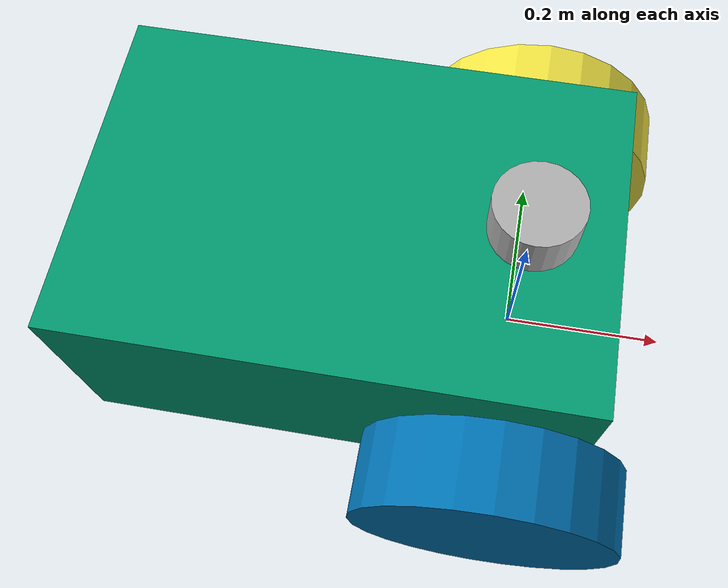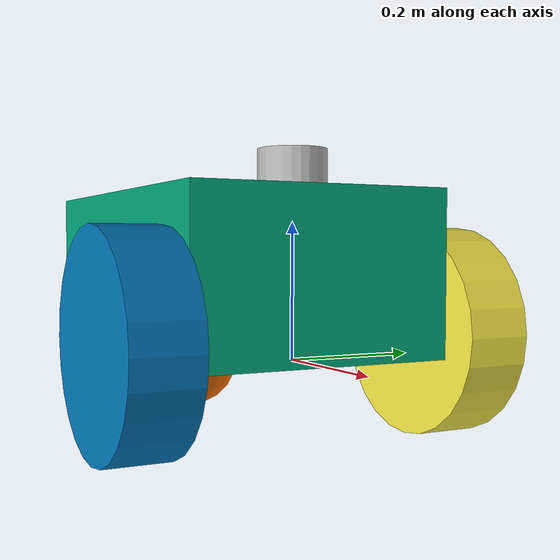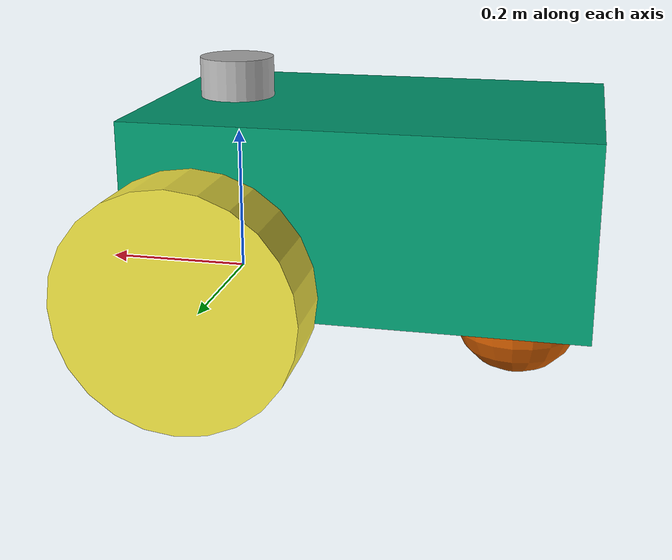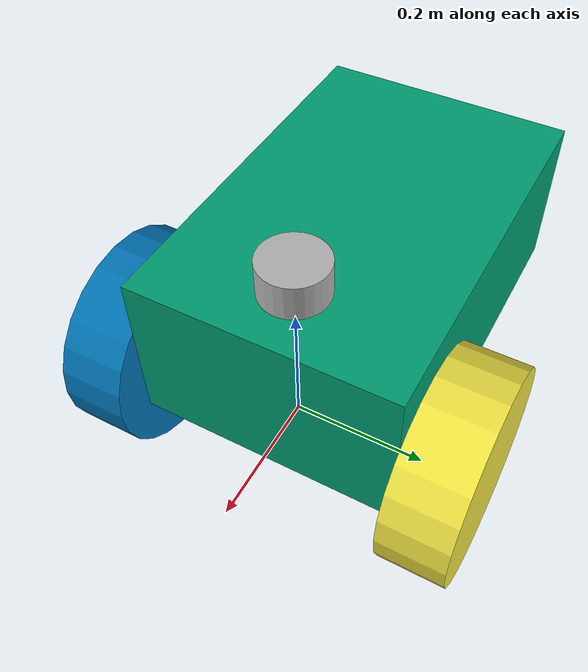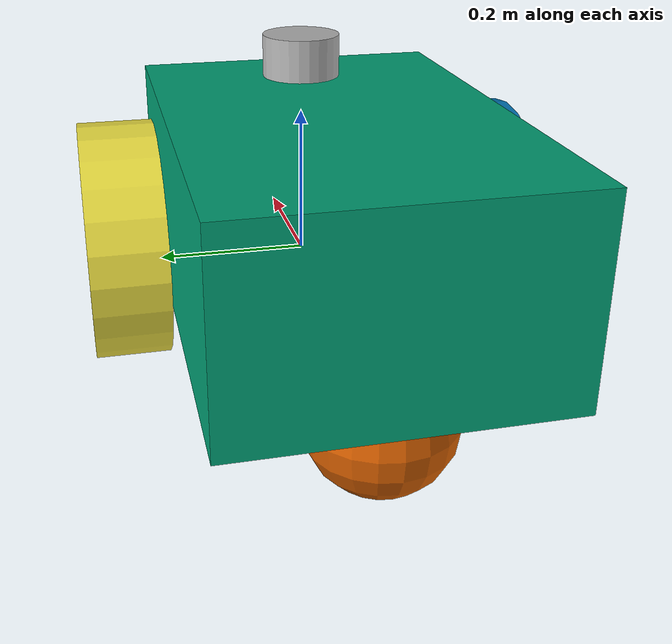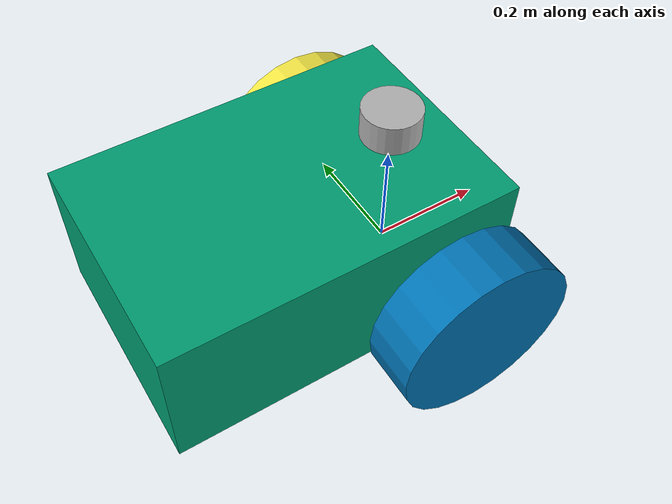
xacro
<?xml version="1.0"?>
<robot name="ISR_M2"
    xmlns:xacro="http://ros.org/wiki/xacro">

    <xacro:arg name="robot_name" default="Robot1"/>

    <!-- Define robot constants -->
    <xacro:property name="base_width" value="0.4"/>
    <xacro:property name="base_length" value="0.6"/>
    <xacro:property name="base_height" value="0.25"/>

    <xacro:property name="wheel_radius" value="0.16"/>
    <xacro:property name="wheel_width" value="0.10"/>

    <xacro:property name="wheel_xoff" value="0.2"/>
    <xacro:property name="wheel_ygap" value="0.0"/>
    <xacro:property name="wheel_zoff" value="-0.09"/>

    <xacro:property name="caster_radius" value="0.09"/>
    <xacro:property name="caster_xoff" value="-0.2"/>

    <!-- Define some commonly used intertial properties  -->
    <xacro:macro name="box_inertia" params="m w h d">
        <inertial>
            <origin xyz="0 0 0" rpy="${pi/2} 0 ${pi/2}"/>
            <mass value="${m}"/>
            <inertia ixx="${(m/12) * (h*h + d*d)}" ixy="0.0" ixz="0.0" iyy="${(m/12) * (w*w + d*d)}" iyz="0.0" izz="${(m/12) * (w*w + h*h)}"/>
        </inertial>
    </xacro:macro>

    <xacro:macro name="cylinder_inertia" params="m r h">
        <inertial>
            <origin xyz="0 0 0" rpy="${pi/2} 0 0" />
            <mass value="${m}"/>
            <inertia ixx="${(m/12) * (3*r*r + h*h)}" ixy = "0" ixz = "0" iyy="${(m/12) * (3*r*r + h*h)}" iyz = "0" izz="${(m/2) * (r*r)}"/>
        </inertial>
    </xacro:macro>

    <xacro:macro name="sphere_inertia" params="m r">
        <inertial>
            <mass value="${m}"/>
            <inertia ixx="${(2/5) * m * (r*r)}" ixy="0.0" ixz="0.0" iyy="${(2/5) * m * (r*r)}" iyz="0.0" izz="${(2/5) * m * (r*r)}"/>
        </inertial>
    </xacro:macro>

    <!-- Odom -->
    <link name="odom">
        <xacro:box_inertia m="0" w="0" d="0" h="0"/>
    </link>

    <!-- Robot Footprint -->
    <link name="base_footprint">
        <xacro:box_inertia m="0" w="0" d="0" h="0"/>
    </link>

    <joint name="odom_joint" type="fixed">
        <parent link="odom"/>
        <child link="base_footprint"/>
        <origin xyz="0.0 0.0 0.0" rpy="0.0 0.0 0.0"/>
    </joint>

    <!-- Robot Base -->
    <link name="base_link">
        <visual name="visual">
            <geometry>
                <box size="${base_length} ${base_width} ${base_height}"/>
            </geometry>
        </visual>

        <collision name="collision">
            <geometry>
                <box size="${base_length} ${base_width} ${base_height}"/>
            </geometry>
        </collision>

        <xacro:box_inertia m="1" w="${base_width}" d="${base_length}" h="${base_height}"/>
    </link>

    <joint name="base_joint" type="fixed">
        <parent link="base_footprint"/>
        <child link="base_link"/>
        <origin xyz="${-(wheel_xoff)} 0.0 0.125" rpy="0.0 0.0 0.0"/>
    </joint>

    <!-- Wheels -->
    <xacro:macro name="wheel" params="prefix x_reflect y_reflect">
        <link name="${prefix}_link">
            <visual>
                <origin xyz="0 0 0" rpy="${pi/2} 0 0"/>
                <geometry>
                    <cylinder radius="${wheel_radius}" length="${wheel_width}"/>
                </geometry>
            </visual>

            <collision>
                <origin xyz="0 0 0" rpy="${pi/2} 0 0"/>
                <geometry>
                    <cylinder radius="${wheel_radius}" length="${wheel_width}"/>
                </geometry>
                <surface>
                    <friction>
                        <ode>
                            <mu>1</mu>
                            <mu2>1</mu2>
                            <slip1>0</slip1>
                            <slip2>0</slip2>
                        </ode>
                    </friction>
                    <contact>
                        <ode>
                            <soft_cfm>0</soft_cfm>
                            <soft_erp>0.2</soft_erp>
                            <kp>1e+13</kp>
                            <kd>1</kd>
                            <max_vel>0.01</max_vel>
                            <min_depth>0.01</min_depth>
                        </ode>
                    </contact>
                </surface>
            </collision>

            <xacro:cylinder_inertia m="1" r="${wheel_radius}" h="${wheel_width}"/>
        </link>

        <joint name="${prefix}_joint" type="continuous">
            <parent link="base_link"/>
            <child link="${prefix}_link"/>
            <origin xyz="${x_reflect*wheel_xoff} ${y_reflect*(base_width/2+wheel_width/2+wheel_ygap)} ${wheel_zoff}" rpy="0 0 0"/>
            <axis xyz="0 1 0"/>
        </joint>
    </xacro:macro>

    <xacro:wheel prefix="left_wheel" x_reflect="1" y_reflect="1" />
    <xacro:wheel prefix="right_wheel" x_reflect="1" y_reflect="-1" />

    <link name="caster">
        <visual>
            <geometry>
                <sphere radius="${caster_radius}"/>
            </geometry>
        </visual>

        <collision>
            <origin xyz="0 0 0" rpy="0 0 0"/>
            <geometry>
                <sphere radius="${caster_radius}"/>
            </geometry>
        </collision>

        <xacro:sphere_inertia m="1" r="${caster_radius}"/>
    </link>

    <joint name="caster_joint" type="continuous">
        <parent link="base_link"/>
        <child link="caster"/>
        <origin xyz="${caster_xoff} 0.0 ${-(base_height/2)+caster_radius-(wheel_radius-wheel_zoff-(base_height/2))}" rpy="0 0 0"/>
    </joint>

    <!-- IMU -->
    <link name="imu_link">
        <visual>
            <geometry>
                <box size="0.05 0.05 0.05"/>
            </geometry>
        </visual>

        <collision>
            <geometry>
                <box size="0.05 0.05 0.05"/>
            </geometry>
        </collision>

        <xacro:box_inertia m="0.1" w="0.05" d="0.05" h="0.05"/>
    </link>

    <joint name="imu_joint" type="fixed">
        <parent link="base_link"/>
        <child link="imu_link"/>
        <origin xyz="${wheel_xoff} 0 ${wheel_zoff}"/>
    </joint>

    <gazebo reference="imu_link">
        <sensor name="imu_sensor" type="imu">
            <plugin filename="libgazebo_ros_imu_sensor.so" name="imu_plugin">
                <ros>
                    <namespace>/demo</namespace>
                    <remapping>~/out:=imu</remapping>
                </ros>
                <initial_orientation_as_reference>false</initial_orientation_as_reference>
            </plugin>
            <always_on>true</always_on>
            <update_rate>100</update_rate>
            <visualize>true</visualize>
            <imu>
                <angular_velocity>
                    <x>
                        <noise type="gaussian">
                            <mean>0.0</mean>
                            <stddev>2e-4</stddev>
                            <bias_mean>0.0000075</bias_mean>
                            <bias_stddev>0.0000008</bias_stddev>
                        </noise>
                    </x>
                    <y>
                        <noise type="gaussian">
                            <mean>0.0</mean>
                            <stddev>2e-4</stddev>
                            <bias_mean>0.0000075</bias_mean>
                            <bias_stddev>0.0000008</bias_stddev>
                        </noise>
                    </y>
                    <z>
                        <noise type="gaussian">
                            <mean>0.0</mean>
                            <stddev>2e-4</stddev>
                            <bias_mean>0.0000075</bias_mean>
                            <bias_stddev>0.0000008</bias_stddev>
                        </noise>
                    </z>
                </angular_velocity>
                <linear_acceleration>
                    <x>
                        <noise type="gaussian">
                            <mean>0.0</mean>
                            <stddev>1.7e-2</stddev>
                            <bias_mean>0.1</bias_mean>
                            <bias_stddev>0.001</bias_stddev>
                        </noise>
                    </x>
                    <y>
                        <noise type="gaussian">
                            <mean>0.0</mean>
                            <stddev>1.7e-2</stddev>
                            <bias_mean>0.1</bias_mean>
                            <bias_stddev>0.001</bias_stddev>
                        </noise>
                    </y>
                    <z>
                        <noise type="gaussian">
                            <mean>0.0</mean>
                            <stddev>1.7e-2</stddev>
                            <bias_mean>0.1</bias_mean>
                            <bias_stddev>0.001</bias_stddev>
                        </noise>
                    </z>
                </linear_acceleration>
            </imu>
        </sensor>
    </gazebo>

    <!-- Lidar -->
    <link name="lidar_link">
        <inertial>
            <origin xyz="0 0 0" rpy="0 0 0"/>
            <mass value="0.125"/>
            <inertia ixx="0.001" ixy="0" ixz="0" iyy="0.001" iyz="0" izz="0.001" />
        </inertial>

        <collision>
            <origin xyz="0 0 0" rpy="0 0 0"/>
            <geometry>
                <cylinder radius="0.0508" length="0.055"/>
            </geometry>
        </collision>

        <visual>
            <origin xyz="0 0 0" rpy="0 0 0"/>
            <geometry>
                <cylinder radius="0.0508" length="0.055"/>
            </geometry>
        </visual>
    </link>

    <joint name="lidar_joint" type="fixed">
        <parent link="base_link"/>
        <child link="lidar_link"/>
        <origin xyz="${wheel_xoff} 0 ${base_height/2+0.055/2}" rpy="0 0 0"/>
    </joint>

    <gazebo reference="lidar_link">
        <sensor name="lidar" type="ray">
            <always_on>true</always_on>
            <visualize>true</visualize>
            <update_rate>10</update_rate>
            <ray>
                <scan>
                    <horizontal>
                        <samples>640</samples>
                        <resolution>1.000000</resolution>
                        <min_angle>-2.26889</min_angle>
                        <max_angle>2.26889</max_angle>
                    </horizontal>
                </scan>
                <range>
                    <min>0.08</min>
                    <max>10</max>
                    <resolution>0.01</resolution>
                </range>
                <noise>
                    <type>gaussian</type>
                    <mean>0.0</mean>
                    <stddev>0.01</stddev>
                </noise>
            </ray>
            <plugin name="scan" filename="libgazebo_ros_ray_sensor.so">
                <ros>
                    <remapping>~/out:=scan</remapping>
                </ros>
                <output_type>sensor_msgs/LaserScan</output_type>
                <frame_name>Robot1/lidar_link</frame_name>
            </plugin>
        </sensor>
    </gazebo>

    <!-- Diff Drive -->
    <gazebo>
        <plugin name='diff_drive' filename='libgazebo_ros_diff_drive.so'>
            <!-- wheels -->
            <left_joint>left_wheel_joint</left_joint>
            <right_joint>right_wheel_joint</right_joint>

            <!-- kinematics -->
            <wheel_separation>0.5</wheel_separation>
            <wheel_diameter>0.32</wheel_diameter>

            <!-- limits -->
            <max_wheel_torque>30</max_wheel_torque>
            <max_wheel_acceleration>1.0</max_wheel_acceleration>

            <!-- output -->
            <publish_odom>true</publish_odom>
            <publish_odom_tf>false</publish_odom_tf>
            <publish_wheel_tf>false</publish_wheel_tf>

            <odometry_topic>odom</odometry_topic>
            <odometry_frame>${robot_name}/odom</odometry_frame>
            <robot_base_frame>${robot_name}/base_footprint</robot_base_frame>
        </plugin>
    </gazebo>
</robot>
